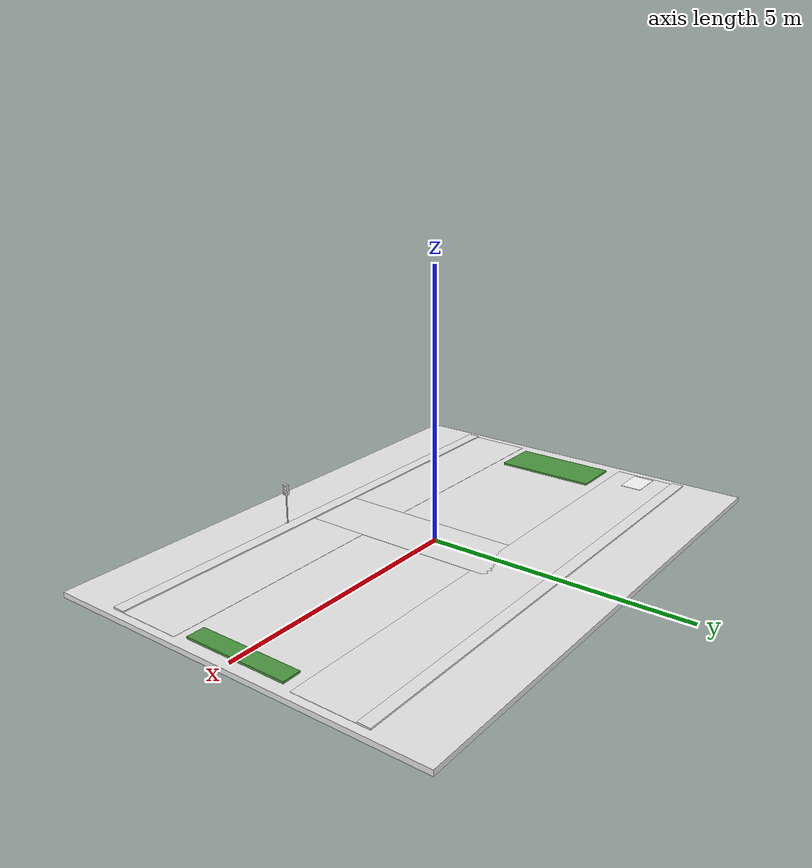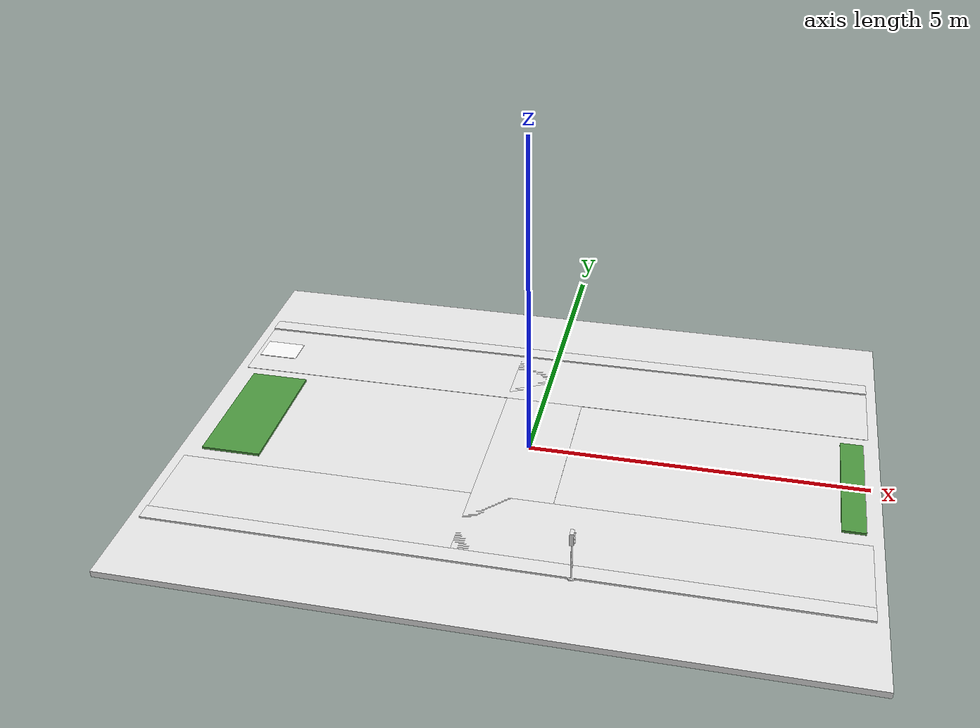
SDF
<sdf version="1.6">
 <world name="sq_community">
  <include><uri>model://sq_traffic_light_red</uri><pose>1.1 -2.62 0 0 0 0</pose><name>sq_tl_2</name></include>
  <model name="sq_ground">
   <static>1</static>
   <link name="ground_base">
    <collision name="ground_base_c">
     <pose>0 0 -0.05 0 0 0</pose>
     <geometry><box><size>10.3 7.5 0.1</size></box></geometry>
    </collision>
    <visual name="ground_base_v">
     <pose>0 0 -0.05 0 0 0</pose>
     <geometry><box><size>10.3 7.5 0.1</size></box></geometry>
     <material>
      <script><uri>file://media/materials/scripts/gazebo.material</uri><name>Gazebo/White</name></script>
      <ambient>0.132 0.1375 0.1485 1</ambient>
      <diffuse>0.24 0.25 0.27 1</diffuse>
      <specular>0.1 0.1 0.1 1</specular>
      <emissive>0 0 0 1</emissive>
     </material>
    </visual>
   </link>
   <link name="start_decal">
    <visual name="start_decal_v">
     <pose>-4.62 1.8 0.008 0 0 0</pose>
     <geometry><box><size>0.62 0.42 0.012</size></box></geometry>
     <material>
      <script>
       <uri>model://sq_textures/materials/scripts</uri>
       <uri>model://sq_textures/materials/textures</uri>
       <name>SQ_start_plate</name>
      </script>
      <ambient>1 1 1 1</ambient>
      <diffuse>1 1 1 1</diffuse>
      <specular>0.05 0.05 0.05 1</specular>
     </material>
    </visual>
   </link>
   <link name="road_a">
    <visual name="road_a_v">
     <pose>0 1.8 0.002 0 0 0</pose>
     <geometry><box><size>10 1.2 0.006</size></box></geometry>
     <material>
      <script><uri>file://media/materials/scripts/gazebo.material</uri><name>Gazebo/White</name></script>
      <ambient>0.1815 0.187 0.198 1</ambient>
      <diffuse>0.33 0.34 0.36 1</diffuse>
      <specular>0.1 0.1 0.1 1</specular>
      <emissive>0 0 0 1</emissive>
     </material>
    </visual>
   </link>
   <link name="road_b">
    <visual name="road_b_v">
     <pose>0 -1.8 0.002 0 0 0</pose>
     <geometry><box><size>10 1.2 0.006</size></box></geometry>
     <material>
      <script><uri>file://media/materials/scripts/gazebo.material</uri><name>Gazebo/White</name></script>
      <ambient>0.1815 0.187 0.198 1</ambient>
      <diffuse>0.33 0.34 0.36 1</diffuse>
      <specular>0.1 0.1 0.1 1</specular>
      <emissive>0 0 0 1</emissive>
     </material>
    </visual>
   </link>
   <link name="road_c">
    <visual name="road_c_v">
     <pose>0 0 0.002 0 0 0</pose>
     <geometry><box><size>1.2 4.8 0.006</size></box></geometry>
     <material>
      <script><uri>file://media/materials/scripts/gazebo.material</uri><name>Gazebo/White</name></script>
      <ambient>0.1815 0.187 0.198 1</ambient>
      <diffuse>0.33 0.34 0.36 1</diffuse>
      <specular>0.1 0.1 0.1 1</specular>
      <emissive>0 0 0 1</emissive>
     </material>
    </visual>
   </link>
   <link name="grass_-4.35">
    <visual name="grass_-4.35_v">
     <pose>-4.35 0 0.02 0 0 0</pose>
     <geometry><box><size>0.9 2 0.04</size></box></geometry>
     <material>
      <script>
       <uri>model://sq_textures/materials/scripts</uri>
       <uri>model://sq_textures/materials/textures</uri>
       <name>SQ_gnd_grass</name>
      </script>
      <ambient>1 1 1 1</ambient>
      <diffuse>1 1 1 1</diffuse>
      <specular>0.05 0.05 0.05 1</specular>
     </material>
    </visual>
   </link>
   <link name="grass_4.75">
    <visual name="grass_4.75_v">
     <pose>4.75 0 0.02 0 0 0</pose>
     <geometry><box><size>0.34 2 0.04</size></box></geometry>
     <material>
      <script>
       <uri>model://sq_textures/materials/scripts</uri>
       <uri>model://sq_textures/materials/textures</uri>
       <name>SQ_gnd_grass</name>
      </script>
      <ambient>1 1 1 1</ambient>
      <diffuse>1 1 1 1</diffuse>
      <specular>0.05 0.05 0.05 1</specular>
     </material>
    </visual>
   </link>
   <link name="walk_2.5">
    <visual name="walk_2.5_v">
     <pose>0 2.52 0.015 0 0 0</pose>
     <geometry><box><size>10 0.24 0.03</size></box></geometry>
     <material>
      <script><uri>file://media/materials/scripts/gazebo.material</uri><name>Gazebo/White</name></script>
      <ambient>0.341 0.3355 0.319 1</ambient>
      <diffuse>0.62 0.61 0.58 1</diffuse>
      <specular>0.1 0.1 0.1 1</specular>
      <emissive>0 0 0 1</emissive>
     </material>
    </visual>
   </link>
   <link name="walk_-2.5">
    <visual name="walk_-2.5_v">
     <pose>0 -2.52 0.015 0 0 0</pose>
     <geometry><box><size>10 0.24 0.03</size></box></geometry>
     <material>
      <script><uri>file://media/materials/scripts/gazebo.material</uri><name>Gazebo/White</name></script>
      <ambient>0.341 0.3355 0.319 1</ambient>
      <diffuse>0.62 0.61 0.58 1</diffuse>
      <specular>0.1 0.1 0.1 1</specular>
      <emissive>0 0 0 1</emissive>
     </material>
    </visual>
   </link>
  </model>
 </world>
</sdf>
